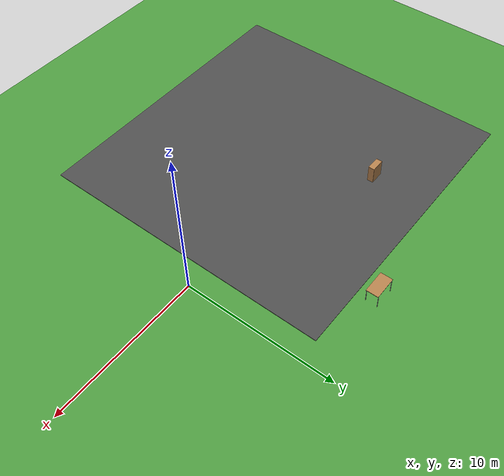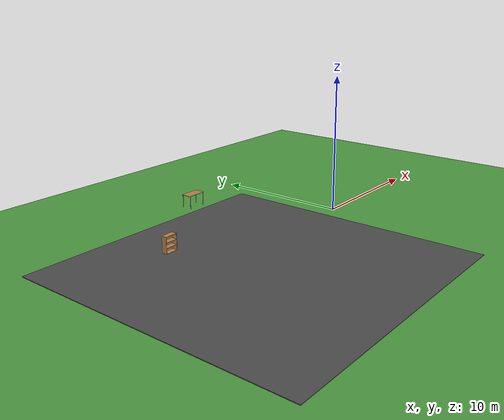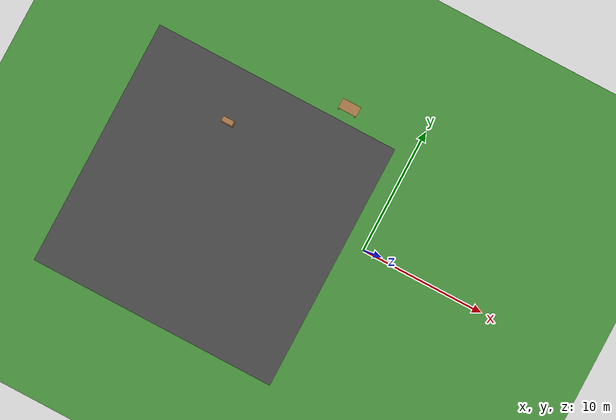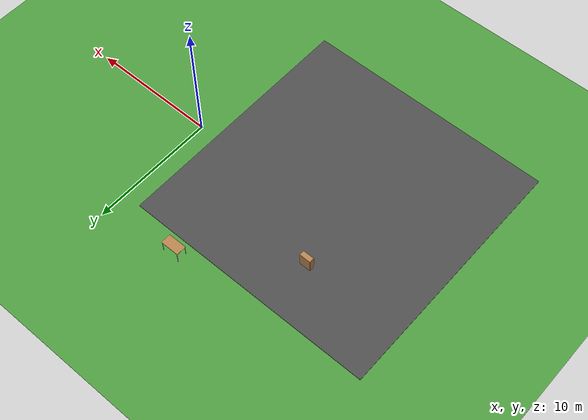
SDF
<sdf version="1.5">
 <world name="default">
  <spherical_coordinates>
   <latitude_deg>48.8789</latitude_deg>
   <longitude_deg>2.36778</longitude_deg>
   <surface_model>EARTH_WGS84</surface_model>
   <elevation>0</elevation>
   <heading_deg>0</heading_deg>
  </spherical_coordinates>
  <physics name="default_physics" default="0" type="ode">
   <real_time_update_rate>1000</real_time_update_rate>
   <max_step_size>0.001</max_step_size>
   <real_time_factor>1</real_time_factor>
   <max_contacts>20</max_contacts>
   <gravity>0 0 -9.81</gravity>
   <magnetic_field>0 2.1e-05 -4.3e-05</magnetic_field>
   <ode>
    <solver>
     <type>world</type>
     <min_step_size>0.0001</min_step_size>
     <iters>50</iters>
     <precon_iters>0</precon_iters>
     <sor>1.4</sor>
     <use_dynamic_moi_rescaling>1</use_dynamic_moi_rescaling>
    </solver>
    <constraints>
     <cfm>0</cfm>
     <erp>0.2</erp>
     <contact_max_correcting_vel>100</contact_max_correcting_vel>
     <contact_surface_layer>0.001</contact_surface_layer>
    </constraints>
   </ode>
  </physics>
  <atmosphere type="adiabatic">
   <temperature>298.15</temperature>
   <pressure>101325</pressure>
   <temperature_gradient>-0.0065</temperature_gradient>
  </atmosphere>
  <light name="sun" type="directional">
   <pose>0 0 10 0 -0 0</pose>
   <diffuse>0.8 0.8 0.8 1</diffuse>
   <specular>0.2 0.2 0.2 1</specular>
   <attenuation>
    <range>1000</range>
    <constant>0.9</constant>
    <linear>0.01</linear>
    <quadratic>0.001</quadratic>
   </attenuation>
   <direction>-0.5 0.1 -0.9</direction>
  </light>
  <scene><ambient>0.4 0.4 0.4 1</ambient><background>0.7 0.7 0.7 1</background><shadows>0</shadows></scene>
  <model name="asphalt_plane">
   <static>1</static>
   <link name="link">
    <collision name="collision">
     <geometry><box><size>20 20 0.1</size></box></geometry>
     <surface><friction><ode><mu>100</mu><mu2>50</mu2></ode></friction></surface>
    </collision>
    <visual name="visual">
     <cast_shadows>0</cast_shadows>
     <geometry><box><size>20 20 0.1</size></box></geometry>
     <material>
      <script>
       <uri>model://asphalt_plane/materials/scripts</uri>
       <uri>model://asphalt_plane/materials/textures</uri>
       <name>vrc/asphalt</name>
      </script>
     </material>
    </visual>
   </link>
   <pose>-11.4372 -2.21797 0 0 -0 0</pose>
  </model>
  <model name="table">
   <static>1</static>
   <link name="link">
    <collision name="surface">
     <pose>0 0 1 0 -0 0</pose>
     <geometry><box><size>1.5 0.8 0.03</size></box></geometry>
     <surface><friction><ode><mu>0.6</mu><mu2>0.6</mu2></ode></friction></surface>
    </collision>
    <visual name="visual1">
     <pose>0 0 1 0 -0 0</pose>
     <geometry><box><size>1.5 0.8 0.03</size></box></geometry>
     <material>
      <script><uri>file://media/materials/scripts/gazebo.material</uri><name>Gazebo/Wood</name></script>
     </material>
    </visual>
    <collision name="front_left_leg">
     <pose>0.68 0.38 0.5 0 -0 0</pose>
     <geometry><cylinder><radius>0.02</radius><length>1</length></cylinder></geometry>
    </collision>
    <visual name="front_left_leg">
     <pose>0.68 0.38 0.5 0 -0 0</pose>
     <geometry><cylinder><radius>0.02</radius><length>1</length></cylinder></geometry>
     <material>
      <script><uri>file://media/materials/scripts/gazebo.material</uri><name>Gazebo/Grey</name></script>
     </material>
    </visual>
    <collision name="front_right_leg">
     <pose>0.68 -0.38 0.5 0 -0 0</pose>
     <geometry><cylinder><radius>0.02</radius><length>1</length></cylinder></geometry>
    </collision>
    <visual name="front_right_leg">
     <pose>0.68 -0.38 0.5 0 -0 0</pose>
     <geometry><cylinder><radius>0.02</radius><length>1</length></cylinder></geometry>
     <material>
      <script><uri>file://media/materials/scripts/gazebo.material</uri><name>Gazebo/Grey</name></script>
     </material>
    </visual>
    <collision name="back_right_leg">
     <pose>-0.68 -0.38 0.5 0 -0 0</pose>
     <geometry><cylinder><radius>0.02</radius><length>1</length></cylinder></geometry>
    </collision>
    <visual name="back_right_leg">
     <pose>-0.68 -0.38 0.5 0 -0 0</pose>
     <geometry><cylinder><radius>0.02</radius><length>1</length></cylinder></geometry>
     <material>
      <script><uri>file://media/materials/scripts/gazebo.material</uri><name>Gazebo/Grey</name></script>
     </material>
    </visual>
    <collision name="back_left_leg">
     <pose>-0.68 0.38 0.5 0 -0 0</pose>
     <geometry><cylinder><radius>0.02</radius><length>1</length></cylinder></geometry>
    </collision>
    <visual name="back_left_leg">
     <pose>-0.68 0.38 0.5 0 -0 0</pose>
     <geometry><cylinder><radius>0.02</radius><length>1</length></cylinder></geometry>
     <material>
      <script><uri>file://media/materials/scripts/gazebo.material</uri><name>Gazebo/Grey</name></script>
     </material>
    </visual>
   </link>
   <pose>-5.93601 8.81081 0 0 -0 0</pose>
  </model>
  <model name="bookshelf">
   <static>1</static>
   <link name="link">
    <inertial><mass>1</mass></inertial>
    <collision name="back">
     <pose>0 0.005 0.6 0 -0 0</pose>
     <geometry><box><size>0.9 0.01 1.2</size></box></geometry>
    </collision>
    <visual name="visual1">
     <pose>0 0.005 0.6 0 -0 0</pose>
     <geometry><box><size>0.9 0.01 1.2</size></box></geometry>
     <material>
      <script><uri>file://media/materials/scripts/gazebo.material</uri><name>Gazebo/Wood</name></script>
     </material>
    </visual>
    <collision name="left_side">
     <pose>0.45 -0.195 0.6 0 -0 0</pose>
     <geometry><box><size>0.02 0.4 1.2</size></box></geometry>
    </collision>
    <visual name="visual2">
     <pose>0.45 -0.195 0.6 0 -0 0</pose>
     <geometry><box><size>0.02 0.4 1.2</size></box></geometry>
     <material>
      <script><uri>file://media/materials/scripts/gazebo.material</uri><name>Gazebo/Wood</name></script>
     </material>
    </visual>
    <collision name="right_side">
     <pose>-0.45 -0.195 0.6 0 -0 0</pose>
     <geometry><box><size>0.02 0.4 1.2</size></box></geometry>
    </collision>
    <visual name="visual3">
     <pose>-0.45 -0.195 0.6 0 -0 0</pose>
     <geometry><box><size>0.02 0.4 1.2</size></box></geometry>
     <material>
      <script><uri>file://media/materials/scripts/gazebo.material</uri><name>Gazebo/Wood</name></script>
     </material>
    </visual>
    <collision name="bottom">
     <pose>0 -0.195 0.03 0 -0 0</pose>
     <geometry><box><size>0.88 0.4 0.06</size></box></geometry>
    </collision>
    <visual name="visual4">
     <pose>0 -0.195 0.03 0 -0 0</pose>
     <geometry><box><size>0.88 0.4 0.06</size></box></geometry>
     <material>
      <script><uri>file://media/materials/scripts/gazebo.material</uri><name>Gazebo/Wood</name></script>
     </material>
    </visual>
    <collision name="top">
     <pose>0 -0.195 1.19 0 -0 0</pose>
     <geometry><box><size>0.88 0.4 0.02</size></box></geometry>
    </collision>
    <visual name="visual5">
     <pose>0 -0.195 1.19 0 -0 0</pose>
     <geometry><box><size>0.88 0.4 0.02</size></box></geometry>
     <material>
      <script><uri>file://media/materials/scripts/gazebo.material</uri><name>Gazebo/Wood</name></script>
     </material>
    </visual>
    <collision name="low_shelf">
     <pose>0 -0.195 0.43 0 -0 0</pose>
     <geometry><box><size>0.88 0.4 0.02</size></box></geometry>
    </collision>
    <visual name="visual6">
     <pose>0 -0.195 0.43 0 -0 0</pose>
     <geometry><box><size>0.88 0.4 0.02</size></box></geometry>
     <material>
      <script><uri>file://media/materials/scripts/gazebo.material</uri><name>Gazebo/Wood</name></script>
     </material>
    </visual>
    <collision name="high_shelf">
     <pose>0 -0.195 0.8 0 -0 0</pose>
     <geometry><box><size>0.88 0.4 0.02</size></box></geometry>
    </collision>
    <visual name="visual7">
     <pose>0 -0.195 0.8 0 -0 0</pose>
     <geometry><box><size>0.88 0.4 0.02</size></box></geometry>
     <material>
      <script><uri>file://media/materials/scripts/gazebo.material</uri><name>Gazebo/Wood</name></script>
     </material>
    </visual>
   </link>
   <pose>-13.4061 3.89679 0 0 -0 0</pose>
  </model>
  <model name="grass_plane_2">
   <static>1</static>
   <link name="link">
    <collision name="collision">
     <geometry><box><size>5000 5000 0.01</size></box></geometry>
     <surface><friction><ode><mu>100</mu><mu2>50</mu2></ode></friction></surface>
    </collision>
    <visual name="visual">
     <cast_shadows>0</cast_shadows>
     <geometry><box><size>5000 5000 0.01</size></box></geometry>
     <material>
      <script>
       <uri>model://grass_plane_2/materials/scripts</uri>
       <uri>model://grass_plane_2/materials/textures</uri>
       <name>Grass/Grass2</name>
      </script>
     </material>
    </visual>
   </link>
   <pose>1.1197 0.735941 0 0 -0 0</pose>
  </model>
 </world>
</sdf>
